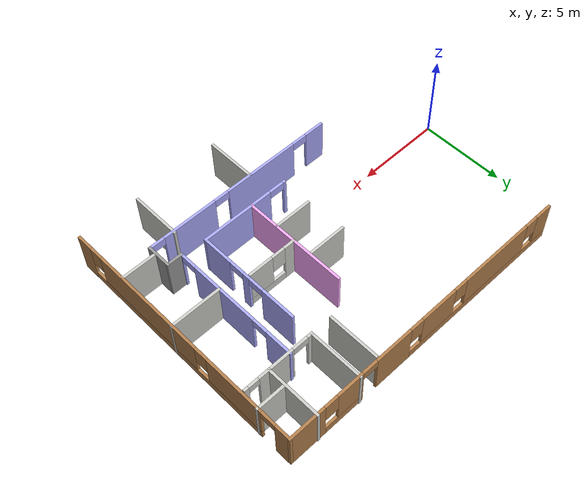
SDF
<sdf version="1.6">
 <model name="newOffice">
  <pose>10.3877 1.61821 0 0 -0 0</pose>
  <link name="Wall_13">
   <collision name="Wall_13_Collision">
    <geometry><box><size>3.25 0.15 2.5</size></box></geometry>
    <pose>0 0 1.25 0 -0 0</pose>
   </collision>
   <visual name="Wall_13_Visual">
    <pose>0 0 1.25 0 -0 0</pose>
    <geometry><box><size>3.25 0.15 2.5</size></box></geometry>
    <material>
     <script><uri>file://media/materials/scripts/gazebo.material</uri><name>Gazebo/CeilingTiled</name></script>
     <ambient>0.760784 0.662745 0.627451 1</ambient>
    </material>
    <meta><layer>0</layer></meta>
   </visual>
   <pose>4.6433 5.89365 0 0 0 -1.5708</pose>
  </link>
  <link name="Wall_14">
   <pose>6.6933 4.34365 0 0 -0 0</pose>
   <visual name="Wall_14_Visual_0">
    <pose>-1.94946 0 1.25 0 -0 0</pose>
    <geometry><box><size>0.351082 0.15 2.5</size></box></geometry>
    <material>
     <script><uri>file://media/materials/scripts/gazebo.material</uri><name>Gazebo/CeilingTiled</name></script>
     <ambient>0.760784 0.662745 0.627451 1</ambient>
    </material>
    <meta><layer>0</layer></meta>
   </visual>
   <collision name="Wall_14_Collision_0">
    <geometry><box><size>0.351082 0.15 2.5</size></box></geometry>
    <pose>-1.94946 0 1.25 0 -0 0</pose>
   </collision>
   <visual name="Wall_14_Visual_1">
    <pose>0.175003 0 1.25 0 -0 0</pose>
    <geometry><box><size>2.09784 0.15 2.5</size></box></geometry>
    <material>
     <script><uri>file://media/materials/scripts/gazebo.material</uri><name>Gazebo/CeilingTiled</name></script>
     <ambient>0.760784 0.662745 0.627451 1</ambient>
    </material>
    <meta><layer>0</layer></meta>
   </visual>
   <collision name="Wall_14_Collision_1">
    <geometry><box><size>2.09784 0.15 2.5</size></box></geometry>
    <pose>0.175003 0 1.25 0 -0 0</pose>
   </collision>
   <visual name="Wall_14_Visual_2">
    <pose>1.98681 0 1.25 0 -0 0</pose>
    <geometry><box><size>0.276388 0.15 2.5</size></box></geometry>
    <material>
     <script><uri>file://media/materials/scripts/gazebo.material</uri><name>Gazebo/CeilingTiled</name></script>
     <ambient>0.760784 0.662745 0.627451 1</ambient>
    </material>
    <meta><layer>0</layer></meta>
   </visual>
   <collision name="Wall_14_Collision_2">
    <geometry><box><size>0.276388 0.15 2.5</size></box></geometry>
    <pose>1.98681 0 1.25 0 -0 0</pose>
   </collision>
   <visual name="Wall_14_Visual_3">
    <pose>-1.32392 0 2.25 0 -0 0</pose>
    <geometry><box><size>0.9 0.15 0.5</size></box></geometry>
    <material>
     <script><uri>file://media/materials/scripts/gazebo.material</uri><name>Gazebo/CeilingTiled</name></script>
     <ambient>0.760784 0.662745 0.627451 1</ambient>
    </material>
    <meta><layer>0</layer></meta>
   </visual>
   <collision name="Wall_14_Collision_3">
    <geometry><box><size>0.9 0.15 0.5</size></box></geometry>
    <pose>-1.32392 0 2.25 0 -0 0</pose>
   </collision>
   <visual name="Wall_14_Visual_4">
    <pose>1.53627 0 2.25 0 -0 0</pose>
    <geometry><box><size>0.624688 0.15 0.5</size></box></geometry>
    <material>
     <script><uri>file://media/materials/scripts/gazebo.material</uri><name>Gazebo/CeilingTiled</name></script>
     <ambient>0.760784 0.662745 0.627451 1</ambient>
    </material>
    <meta><layer>0</layer></meta>
   </visual>
   <collision name="Wall_14_Collision_4">
    <geometry><box><size>0.624688 0.15 0.5</size></box></geometry>
    <pose>1.53627 0 2.25 0 -0 0</pose>
   </collision>
  </link>
  <link name="Wall_16">
   <collision name="Wall_16_Collision">
    <geometry><box><size>3.25 0.15 2.5</size></box></geometry>
    <pose>0 0 1.25 0 -0 0</pose>
   </collision>
   <visual name="Wall_16_Visual">
    <pose>0 0 1.25 0 -0 0</pose>
    <geometry><box><size>3.25 0.15 2.5</size></box></geometry>
    <material>
     <script><uri>file://media/materials/scripts/gazebo.material</uri><name>Gazebo/CeilingTiled</name></script>
     <ambient>0.760784 0.662745 0.627451 1</ambient>
    </material>
    <meta><layer>0</layer></meta>
   </visual>
   <pose>7.29516 5.89365 0 0 0 -1.5708</pose>
  </link>
  <link name="Wall_18">
   <collision name="Wall_18_Collision">
    <geometry><box><size>1.75 0.15 2.5</size></box></geometry>
    <pose>0 0 1.25 0 -0 0</pose>
   </collision>
   <visual name="Wall_18_Visual">
    <pose>0 0 1.25 0 -0 0</pose>
    <geometry><box><size>1.75 0.15 2.5</size></box></geometry>
    <material>
     <script><uri>file://media/materials/scripts/gazebo.material</uri><name>Gazebo/CeilingTiled</name></script>
     <ambient>0.760784 0.662745 0.627451 1</ambient>
    </material>
    <meta><layer>0</layer></meta>
   </visual>
   <pose>8.14169 5.3966 0 0 -0 0</pose>
  </link>
  <link name="Wall_2">
   <pose>8.92902 -0.018654 0 0 -0 1.5708</pose>
   <visual name="Wall_2_Visual_0">
    <pose>-7.00867 0 1.25 0 -0 0</pose>
    <geometry><box><size>0.982667 0.15 2.5</size></box></geometry>
    <material>
     <script><uri>file://media/materials/scripts/gazebo.material</uri><name>Gazebo/Wood</name></script>
     <ambient>1 0.666667 1 1</ambient>
    </material>
    <meta><layer>0</layer></meta>
   </visual>
   <collision name="Wall_2_Collision_0">
    <geometry><box><size>0.982667 0.15 2.5</size></box></geometry>
    <pose>-7.00867 0 1.25 0 -0 0</pose>
   </collision>
   <visual name="Wall_2_Visual_1">
    <pose>7.01908 0 1.25 0 -0 0</pose>
    <geometry><box><size>0.961832 0.15 2.5</size></box></geometry>
    <material>
     <script><uri>file://media/materials/scripts/gazebo.material</uri><name>Gazebo/Wood</name></script>
     <ambient>1 0.666667 1 1</ambient>
    </material>
    <meta><layer>0</layer></meta>
   </visual>
   <collision name="Wall_2_Collision_1">
    <geometry><box><size>0.961832 0.15 2.5</size></box></geometry>
    <pose>7.01908 0 1.25 0 -0 0</pose>
   </collision>
   <visual name="Wall_2_Visual_2">
    <pose>-0.439582 0 0.25 0 -0 0</pose>
    <geometry><box><size>12.1555 0.15 0.5</size></box></geometry>
    <material>
     <script><uri>file://media/materials/scripts/gazebo.material</uri><name>Gazebo/Wood</name></script>
     <ambient>1 0.666667 1 1</ambient>
    </material>
    <meta><layer>0</layer></meta>
   </visual>
   <collision name="Wall_2_Collision_2">
    <geometry><box><size>12.1555 0.15 0.5</size></box></geometry>
    <pose>-0.439582 0 0.25 0 -0 0</pose>
   </collision>
   <visual name="Wall_2_Visual_3">
    <pose>-2.24767 0 1.5 0 -0 0</pose>
    <geometry><box><size>6.93933 0.15 2</size></box></geometry>
    <material>
     <script><uri>file://media/materials/scripts/gazebo.material</uri><name>Gazebo/Wood</name></script>
     <ambient>1 0.666667 1 1</ambient>
    </material>
    <meta><layer>0</layer></meta>
   </visual>
   <collision name="Wall_2_Collision_3">
    <geometry><box><size>6.93933 0.15 2</size></box></geometry>
    <pose>-2.24767 0 1.5 0 -0 0</pose>
   </collision>
   <visual name="Wall_2_Visual_4">
    <pose>3.83008 0 1.5 0 -0 0</pose>
    <geometry><box><size>3.61617 0.15 2</size></box></geometry>
    <material>
     <script><uri>file://media/materials/scripts/gazebo.material</uri><name>Gazebo/Wood</name></script>
     <ambient>1 0.666667 1 1</ambient>
    </material>
    <meta><layer>0</layer></meta>
   </visual>
   <collision name="Wall_2_Collision_4">
    <geometry><box><size>3.61617 0.15 2</size></box></geometry>
    <pose>3.83008 0 1.5 0 -0 0</pose>
   </collision>
   <visual name="Wall_2_Visual_5">
    <pose>-6.11733 0 1.9 0 -0 0</pose>
    <geometry><box><size>0.8 0.15 1.2</size></box></geometry>
    <material>
     <script><uri>file://media/materials/scripts/gazebo.material</uri><name>Gazebo/Wood</name></script>
     <ambient>1 0.666667 1 1</ambient>
    </material>
    <meta><layer>0</layer></meta>
   </visual>
   <collision name="Wall_2_Collision_5">
    <geometry><box><size>0.8 0.15 1.2</size></box></geometry>
    <pose>-6.11733 0 1.9 0 -0 0</pose>
   </collision>
   <visual name="Wall_2_Visual_6">
    <pose>1.622 0 1.9 0 -0 0</pose>
    <geometry><box><size>0.8 0.15 1.2</size></box></geometry>
    <material>
     <script><uri>file://media/materials/scripts/gazebo.material</uri><name>Gazebo/Wood</name></script>
     <ambient>1 0.666667 1 1</ambient>
    </material>
    <meta><layer>0</layer></meta>
   </visual>
   <collision name="Wall_2_Collision_6">
    <geometry><box><size>0.8 0.15 1.2</size></box></geometry>
    <pose>1.622 0 1.9 0 -0 0</pose>
   </collision>
   <visual name="Wall_2_Visual_7">
    <pose>6.08817 0 2.25 0 -0 0</pose>
    <geometry><box><size>0.9 0.15 0.5</size></box></geometry>
    <material>
     <script><uri>file://media/materials/scripts/gazebo.material</uri><name>Gazebo/Wood</name></script>
     <ambient>1 0.666667 1 1</ambient>
    </material>
    <meta><layer>0</layer></meta>
   </visual>
   <collision name="Wall_2_Collision_7">
    <geometry><box><size>0.9 0.15 0.5</size></box></geometry>
    <pose>6.08817 0 2.25 0 -0 0</pose>
   </collision>
  </link>
  <link name="Wall_3">
   <pose>0.004022 7.40635 0 0 -0 3.14159</pose>
   <visual name="Wall_3_Visual_0">
    <pose>-7.91801 0 1.25 0 -0 0</pose>
    <geometry><box><size>2.16398 0.15 2.5</size></box></geometry>
    <material>
     <script><uri>file://media/materials/scripts/gazebo.material</uri><name>Gazebo/Wood</name></script>
     <ambient>1 0.666667 1 1</ambient>
    </material>
    <meta><layer>0</layer></meta>
   </visual>
   <collision name="Wall_3_Collision_0">
    <geometry><box><size>2.16398 0.15 2.5</size></box></geometry>
    <pose>-7.91801 0 1.25 0 -0 0</pose>
   </collision>
   <visual name="Wall_3_Visual_1">
    <pose>-2.4037 0 1.25 0 -0 0</pose>
    <geometry><box><size>2.2702 0.15 2.5</size></box></geometry>
    <material>
     <script><uri>file://media/materials/scripts/gazebo.material</uri><name>Gazebo/Wood</name></script>
     <ambient>1 0.666667 1 1</ambient>
    </material>
    <meta><layer>0</layer></meta>
   </visual>
   <collision name="Wall_3_Collision_1">
    <geometry><box><size>2.2702 0.15 2.5</size></box></geometry>
    <pose>-2.4037 0 1.25 0 -0 0</pose>
   </collision>
   <visual name="Wall_3_Visual_2">
    <pose>-5.63741 0 0.25 0 -0 0</pose>
    <geometry><box><size>2.39722 0.15 0.5</size></box></geometry>
    <material>
     <script><uri>file://media/materials/scripts/gazebo.material</uri><name>Gazebo/Wood</name></script>
     <ambient>1 0.666667 1 1</ambient>
    </material>
    <meta><layer>0</layer></meta>
   </visual>
   <collision name="Wall_3_Collision_2">
    <geometry><box><size>2.39722 0.15 0.5</size></box></geometry>
    <pose>-5.63741 0 0.25 0 -0 0</pose>
   </collision>
   <visual name="Wall_3_Visual_3">
    <pose>3.8657 0 0.25 0 -0 0</pose>
    <geometry><box><size>10.2686 0.15 0.5</size></box></geometry>
    <material>
     <script><uri>file://media/materials/scripts/gazebo.material</uri><name>Gazebo/Wood</name></script>
     <ambient>1 0.666667 1 1</ambient>
    </material>
    <meta><layer>0</layer></meta>
   </visual>
   <collision name="Wall_3_Collision_3">
    <geometry><box><size>10.2686 0.15 0.5</size></box></geometry>
    <pose>3.8657 0 0.25 0 -0 0</pose>
   </collision>
   <visual name="Wall_3_Visual_4">
    <pose>-5.23741 0 1.5 0 -0 0</pose>
    <geometry><box><size>1.59722 0.15 2</size></box></geometry>
    <material>
     <script><uri>file://media/materials/scripts/gazebo.material</uri><name>Gazebo/Wood</name></script>
     <ambient>1 0.666667 1 1</ambient>
    </material>
    <meta><layer>0</layer></meta>
   </visual>
   <collision name="Wall_3_Collision_4">
    <geometry><box><size>1.59722 0.15 2</size></box></geometry>
    <pose>-5.23741 0 1.5 0 -0 0</pose>
   </collision>
   <visual name="Wall_3_Visual_5">
    <pose>-5.23741 0 1.5 0 -0 0</pose>
    <geometry><box><size>1.59722 0.15 2</size></box></geometry>
    <material>
     <script><uri>file://media/materials/scripts/gazebo.material</uri><name>Gazebo/Wood</name></script>
     <ambient>1 0.666667 1 1</ambient>
    </material>
    <meta><layer>0</layer></meta>
   </visual>
   <collision name="Wall_3_Collision_5">
    <geometry><box><size>1.59722 0.15 2</size></box></geometry>
    <pose>-5.23741 0 1.5 0 -0 0</pose>
   </collision>
   <visual name="Wall_3_Visual_6">
    <pose>0.676212 0 1.5 0 -0 0</pose>
    <geometry><box><size>2.28961 0.15 2</size></box></geometry>
    <material>
     <script><uri>file://media/materials/scripts/gazebo.material</uri><name>Gazebo/Wood</name></script>
     <ambient>1 0.666667 1 1</ambient>
    </material>
    <meta><layer>0</layer></meta>
   </visual>
   <collision name="Wall_3_Collision_6">
    <geometry><box><size>2.28961 0.15 2</size></box></geometry>
    <pose>0.676212 0 1.5 0 -0 0</pose>
   </collision>
   <visual name="Wall_3_Visual_7">
    <pose>4.88237 0 1.5 0 -0 0</pose>
    <geometry><box><size>4.5227 0.15 2</size></box></geometry>
    <material>
     <script><uri>file://media/materials/scripts/gazebo.material</uri><name>Gazebo/Wood</name></script>
     <ambient>1 0.666667 1 1</ambient>
    </material>
    <meta><layer>0</layer></meta>
   </visual>
   <collision name="Wall_3_Collision_7">
    <geometry><box><size>4.5227 0.15 2</size></box></geometry>
    <pose>4.88237 0 1.5 0 -0 0</pose>
   </collision>
   <visual name="Wall_3_Visual_8">
    <pose>8.47186 0 1.5 0 -0 0</pose>
    <geometry><box><size>1.05628 0.15 2</size></box></geometry>
    <material>
     <script><uri>file://media/materials/scripts/gazebo.material</uri><name>Gazebo/Wood</name></script>
     <ambient>1 0.666667 1 1</ambient>
    </material>
    <meta><layer>0</layer></meta>
   </visual>
   <collision name="Wall_3_Collision_8">
    <geometry><box><size>1.05628 0.15 2</size></box></geometry>
    <pose>8.47186 0 1.5 0 -0 0</pose>
   </collision>
   <visual name="Wall_3_Visual_9">
    <pose>-6.43602 0 1.9 0 -0 0</pose>
    <geometry><box><size>0.8 0.15 1.2</size></box></geometry>
    <material>
     <script><uri>file://media/materials/scripts/gazebo.material</uri><name>Gazebo/Wood</name></script>
     <ambient>1 0.666667 1 1</ambient>
    </material>
    <meta><layer>0</layer></meta>
   </visual>
   <collision name="Wall_3_Collision_9">
    <geometry><box><size>0.8 0.15 1.2</size></box></geometry>
    <pose>-6.43602 0 1.9 0 -0 0</pose>
   </collision>
   <visual name="Wall_3_Visual_10">
    <pose>-0.868594 0 1.9 0 -0 0</pose>
    <geometry><box><size>0.8 0.15 1.2</size></box></geometry>
    <material>
     <script><uri>file://media/materials/scripts/gazebo.material</uri><name>Gazebo/Wood</name></script>
     <ambient>1 0.666667 1 1</ambient>
    </material>
    <meta><layer>0</layer></meta>
   </visual>
   <collision name="Wall_3_Collision_10">
    <geometry><box><size>0.8 0.15 1.2</size></box></geometry>
    <pose>-0.868594 0 1.9 0 -0 0</pose>
   </collision>
   <visual name="Wall_3_Visual_11">
    <pose>2.22102 0 1.9 0 -0 0</pose>
    <geometry><box><size>0.8 0.15 1.2</size></box></geometry>
    <material>
     <script><uri>file://media/materials/scripts/gazebo.material</uri><name>Gazebo/Wood</name></script>
     <ambient>1 0.666667 1 1</ambient>
    </material>
    <meta><layer>0</layer></meta>
   </visual>
   <collision name="Wall_3_Collision_11">
    <geometry><box><size>0.8 0.15 1.2</size></box></geometry>
    <pose>2.22102 0 1.9 0 -0 0</pose>
   </collision>
   <visual name="Wall_3_Visual_12">
    <pose>7.54372 0 1.9 0 -0 0</pose>
    <geometry><box><size>0.8 0.15 1.2</size></box></geometry>
    <material>
     <script><uri>file://media/materials/scripts/gazebo.material</uri><name>Gazebo/Wood</name></script>
     <ambient>1 0.666667 1 1</ambient>
    </material>
    <meta><layer>0</layer></meta>
   </visual>
   <collision name="Wall_3_Collision_12">
    <geometry><box><size>0.8 0.15 1.2</size></box></geometry>
    <pose>7.54372 0 1.9 0 -0 0</pose>
   </collision>
   <visual name="Wall_3_Visual_13">
    <pose>-3.9888 0 2.25 0 -0 0</pose>
    <geometry><box><size>0.9 0.15 0.5</size></box></geometry>
    <material>
     <script><uri>file://media/materials/scripts/gazebo.material</uri><name>Gazebo/Wood</name></script>
     <ambient>1 0.666667 1 1</ambient>
    </material>
    <meta><layer>0</layer></meta>
   </visual>
   <collision name="Wall_3_Collision_13">
    <geometry><box><size>0.9 0.15 0.5</size></box></geometry>
    <pose>-3.9888 0 2.25 0 -0 0</pose>
   </collision>
   <visual name="Wall_3_Visual_14">
    <pose>-3.9888 0 2.25 0 -0 0</pose>
    <geometry><box><size>0.9 0.15 0.5</size></box></geometry>
    <material>
     <script><uri>file://media/materials/scripts/gazebo.material</uri><name>Gazebo/Wood</name></script>
     <ambient>1 0.666667 1 1</ambient>
    </material>
    <meta><layer>0</layer></meta>
   </visual>
   <collision name="Wall_3_Collision_14">
    <geometry><box><size>0.9 0.15 0.5</size></box></geometry>
    <pose>-3.9888 0 2.25 0 -0 0</pose>
   </collision>
  </link>
  <link name="Wall_33">
   <pose>4.64199 0.020406 0 0 0 -1.5708</pose>
   <visual name="Wall_33_Visual_0">
    <pose>-2.07423 0 1.25 0 -0 0</pose>
    <geometry><box><size>2.10154 0.15 2.5</size></box></geometry>
    <material>
     <script><uri>file://media/materials/scripts/gazebo.material</uri><name>Gazebo/Grey</name></script>
     <ambient>0.666667 0.666667 1 1</ambient>
    </material>
    <meta><layer>0</layer></meta>
   </visual>
   <collision name="Wall_33_Collision_0">
    <geometry><box><size>2.10154 0.15 2.5</size></box></geometry>
    <pose>-2.07423 0 1.25 0 -0 0</pose>
   </collision>
   <visual name="Wall_33_Visual_1">
    <pose>0.099527 0 1.25 0 -0 0</pose>
    <geometry><box><size>0.44597 0.15 2.5</size></box></geometry>
    <material>
     <script><uri>file://media/materials/scripts/gazebo.material</uri><name>Gazebo/Grey</name></script>
     <ambient>0.666667 0.666667 1 1</ambient>
    </material>
    <meta><layer>0</layer></meta>
   </visual>
   <collision name="Wall_33_Collision_1">
    <geometry><box><size>0.44597 0.15 2.5</size></box></geometry>
    <pose>0.099527 0 1.25 0 -0 0</pose>
   </collision>
   <visual name="Wall_33_Visual_2">
    <pose>2.17376 0 1.25 0 -0 0</pose>
    <geometry><box><size>1.90249 0.15 2.5</size></box></geometry>
    <material>
     <script><uri>file://media/materials/scripts/gazebo.material</uri><name>Gazebo/Grey</name></script>
     <ambient>0.666667 0.666667 1 1</ambient>
    </material>
    <meta><layer>0</layer></meta>
   </visual>
   <collision name="Wall_33_Collision_2">
    <geometry><box><size>1.90249 0.15 2.5</size></box></geometry>
    <pose>2.17376 0 1.25 0 -0 0</pose>
   </collision>
   <visual name="Wall_33_Visual_3">
    <pose>-0.573458 0 2.25 0 -0 0</pose>
    <geometry><box><size>0.9 0.15 0.5</size></box></geometry>
    <material>
     <script><uri>file://media/materials/scripts/gazebo.material</uri><name>Gazebo/Grey</name></script>
     <ambient>0.666667 0.666667 1 1</ambient>
    </material>
    <meta><layer>0</layer></meta>
   </visual>
   <collision name="Wall_33_Collision_3">
    <geometry><box><size>0.9 0.15 0.5</size></box></geometry>
    <pose>-0.573458 0 2.25 0 -0 0</pose>
   </collision>
   <visual name="Wall_33_Visual_4">
    <pose>0.772512 0 2.25 0 -0 0</pose>
    <geometry><box><size>0.9 0.15 0.5</size></box></geometry>
    <material>
     <script><uri>file://media/materials/scripts/gazebo.material</uri><name>Gazebo/Grey</name></script>
     <ambient>0.666667 0.666667 1 1</ambient>
    </material>
    <meta><layer>0</layer></meta>
   </visual>
   <collision name="Wall_33_Collision_4">
    <geometry><box><size>0.9 0.15 0.5</size></box></geometry>
    <pose>0.772512 0 2.25 0 -0 0</pose>
   </collision>
  </link>
  <link name="Wall_35">
   <pose>2.01699 -3.02959 0 0 -0 3.14159</pose>
   <visual name="Wall_35_Visual_0">
    <pose>-0.543959 0 1.25 0 -0 0</pose>
    <geometry><box><size>4.31208 0.15 2.5</size></box></geometry>
    <material>
     <script><uri>file://media/materials/scripts/gazebo.material</uri><name>Gazebo/Grey</name></script>
     <ambient>0.666667 0.666667 1 1</ambient>
    </material>
    <meta><layer>0</layer></meta>
   </visual>
   <collision name="Wall_35_Collision_0">
    <geometry><box><size>4.31208 0.15 2.5</size></box></geometry>
    <pose>-0.543959 0 1.25 0 -0 0</pose>
   </collision>
   <visual name="Wall_35_Visual_1">
    <pose>2.60604 0 1.25 0 -0 0</pose>
    <geometry><box><size>0.187919 0.15 2.5</size></box></geometry>
    <material>
     <script><uri>file://media/materials/scripts/gazebo.material</uri><name>Gazebo/Grey</name></script>
     <ambient>0.666667 0.666667 1 1</ambient>
    </material>
    <meta><layer>0</layer></meta>
   </visual>
   <collision name="Wall_35_Collision_1">
    <geometry><box><size>0.187919 0.15 2.5</size></box></geometry>
    <pose>2.60604 0 1.25 0 -0 0</pose>
   </collision>
   <visual name="Wall_35_Visual_2">
    <pose>2.06208 0 2.25 0 -0 0</pose>
    <geometry><box><size>0.9 0.15 0.5</size></box></geometry>
    <material>
     <script><uri>file://media/materials/scripts/gazebo.material</uri><name>Gazebo/Grey</name></script>
     <ambient>0.666667 0.666667 1 1</ambient>
    </material>
    <meta><layer>0</layer></meta>
   </visual>
   <collision name="Wall_35_Collision_2">
    <geometry><box><size>0.9 0.15 0.5</size></box></geometry>
    <pose>2.06208 0 2.25 0 -0 0</pose>
   </collision>
  </link>
  <link name="Wall_37">
   <collision name="Wall_37_Collision">
    <geometry><box><size>6.25 0.15 2.5</size></box></geometry>
    <pose>0 0 1.25 0 -0 0</pose>
   </collision>
   <visual name="Wall_37_Visual">
    <pose>0 0 1.25 0 -0 0</pose>
    <geometry><box><size>6.25 0.15 2.5</size></box></geometry>
    <material>
     <script><uri>file://media/materials/scripts/gazebo.material</uri><name>Gazebo/Grey</name></script>
     <ambient>1 0.666667 1 1</ambient>
    </material>
    <meta><layer>0</layer></meta>
   </visual>
   <pose>1.61924 0.020406 0 0 0 -1.5708</pose>
  </link>
  <link name="Wall_39">
   <collision name="Wall_39_Collision">
    <geometry><box><size>2.25 0.15 2.5</size></box></geometry>
    <pose>0 0 1.25 0 -0 0</pose>
   </collision>
   <visual name="Wall_39_Visual">
    <pose>0 0 1.25 0 -0 0</pose>
    <geometry><box><size>2.25 0.15 2.5</size></box></geometry>
    <material>
     <script><uri>file://media/materials/scripts/gazebo.material</uri><name>Gazebo/CeilingTiled</name></script>
     <ambient>1 0.666667 1 1</ambient>
    </material>
    <meta><layer>0</layer></meta>
   </visual>
   <pose>0.436095 1.1164 0 0 -0 0</pose>
  </link>
  <link name="Wall_41">
   <collision name="Wall_41_Collision">
    <geometry><box><size>2.25 0.15 2.5</size></box></geometry>
    <pose>0 0 1.25 0 -0 0</pose>
   </collision>
   <visual name="Wall_41_Visual">
    <pose>0 0 1.25 0 -0 0</pose>
    <geometry><box><size>2.25 0.15 2.5</size></box></geometry>
    <material>
     <script><uri>file://media/materials/scripts/gazebo.material</uri><name>Gazebo/CeilingTiled</name></script>
     <ambient>1 0.666667 1 1</ambient>
    </material>
    <meta><layer>0</layer></meta>
   </visual>
   <pose>0.529143 -1.20979 0 0 -0 0</pose>
  </link>
  <link name="Wall_43">
   <pose>3.04424 -0.000172 0 0 -0 0</pose>
   <visual name="Wall_43_Visual_0">
    <pose>-1.1334 0 1.25 0 -0 0</pose>
    <geometry><box><size>0.733196 0.15 2.5</size></box></geometry>
    <material>
     <script><uri>file://media/materials/scripts/gazebo.material</uri><name>Gazebo/CeilingTiled</name></script>
     <ambient>1 1 1 1</ambient>
    </material>
    <meta><layer>0</layer></meta>
   </visual>
   <collision name="Wall_43_Collision_0">
    <geometry><box><size>0.733196 0.15 2.5</size></box></geometry>
    <pose>-1.1334 0 1.25 0 -0 0</pose>
   </collision>
   <visual name="Wall_43_Visual_1">
    <pose>0.366598 0 0.25 0 -0 0</pose>
    <geometry><box><size>2.2668 0.15 0.5</size></box></geometry>
    <material>
     <script><uri>file://media/materials/scripts/gazebo.material</uri><name>Gazebo/CeilingTiled</name></script>
     <ambient>1 1 1 1</ambient>
    </material>
    <meta><layer>0</layer></meta>
   </visual>
   <collision name="Wall_43_Collision_1">
    <geometry><box><size>2.2668 0.15 0.5</size></box></geometry>
    <pose>0.366598 0 0.25 0 -0 0</pose>
   </collision>
   <visual name="Wall_43_Visual_2">
    <pose>0.766598 0 1.5 0 -0 0</pose>
    <geometry><box><size>1.4668 0.15 2</size></box></geometry>
    <material>
     <script><uri>file://media/materials/scripts/gazebo.material</uri><name>Gazebo/CeilingTiled</name></script>
     <ambient>1 1 1 1</ambient>
    </material>
    <meta><layer>0</layer></meta>
   </visual>
   <collision name="Wall_43_Collision_2">
    <geometry><box><size>1.4668 0.15 2</size></box></geometry>
    <pose>0.766598 0 1.5 0 -0 0</pose>
   </collision>
   <visual name="Wall_43_Visual_3">
    <pose>-0.366804 0 1.9 0 -0 0</pose>
    <geometry><box><size>0.8 0.15 1.2</size></box></geometry>
    <material>
     <script><uri>file://media/materials/scripts/gazebo.material</uri><name>Gazebo/CeilingTiled</name></script>
     <ambient>1 1 1 1</ambient>
    </material>
    <meta><layer>0</layer></meta>
   </visual>
   <collision name="Wall_43_Collision_3">
    <geometry><box><size>0.8 0.15 1.2</size></box></geometry>
    <pose>-0.366804 0 1.9 0 -0 0</pose>
   </collision>
  </link>
  <link name="Wall_47">
   <pose>1.09199 -4.54748 0 0 -0 0</pose>
   <visual name="Wall_47_Visual_0">
    <pose>-5.26055 0 1.25 0 -0 0</pose>
    <geometry><box><size>1.2289 0.15 2.5</size></box></geometry>
    <material>
     <script><uri>file://media/materials/scripts/gazebo.material</uri><name>Gazebo/Grey</name></script>
     <ambient>0.666667 0.666667 1 1</ambient>
    </material>
    <meta><layer>0</layer></meta>
   </visual>
   <collision name="Wall_47_Collision_0">
    <geometry><box><size>1.2289 0.15 2.5</size></box></geometry>
    <pose>-5.26055 0 1.25 0 -0 0</pose>
   </collision>
   <visual name="Wall_47_Visual_1">
    <pose>-1.48887 0 1.25 0 -0 0</pose>
    <geometry><box><size>4.51447 0.15 2.5</size></box></geometry>
    <material>
     <script><uri>file://media/materials/scripts/gazebo.material</uri><name>Gazebo/Grey</name></script>
     <ambient>0.666667 0.666667 1 1</ambient>
    </material>
    <meta><layer>0</layer></meta>
   </visual>
   <collision name="Wall_47_Collision_1">
    <geometry><box><size>4.51447 0.15 2.5</size></box></geometry>
    <pose>-1.48887 0 1.25 0 -0 0</pose>
   </collision>
   <visual name="Wall_47_Visual_2">
    <pose>3.2985 0 1.25 0 -0 0</pose>
    <geometry><box><size>3.26027 0.15 2.5</size></box></geometry>
    <material>
     <script><uri>file://media/materials/scripts/gazebo.material</uri><name>Gazebo/Grey</name></script>
     <ambient>0.666667 0.666667 1 1</ambient>
    </material>
    <meta><layer>0</layer></meta>
   </visual>
   <collision name="Wall_47_Collision_2">
    <geometry><box><size>3.26027 0.15 2.5</size></box></geometry>
    <pose>3.2985 0 1.25 0 -0 0</pose>
   </collision>
   <visual name="Wall_47_Visual_3">
    <pose>5.85182 0 1.25 0 -0 0</pose>
    <geometry><box><size>0.046363 0.15 2.5</size></box></geometry>
    <material>
     <script><uri>file://media/materials/scripts/gazebo.material</uri><name>Gazebo/Grey</name></script>
     <ambient>0.666667 0.666667 1 1</ambient>
    </material>
    <meta><layer>0</layer></meta>
   </visual>
   <collision name="Wall_47_Collision_3">
    <geometry><box><size>0.046363 0.15 2.5</size></box></geometry>
    <pose>5.85182 0 1.25 0 -0 0</pose>
   </collision>
   <visual name="Wall_47_Visual_4">
    <pose>-4.19611 0 2.25 0 -0 0</pose>
    <geometry><box><size>0.9 0.15 0.5</size></box></geometry>
    <material>
     <script><uri>file://media/materials/scripts/gazebo.material</uri><name>Gazebo/Grey</name></script>
     <ambient>0.666667 0.666667 1 1</ambient>
    </material>
    <meta><layer>0</layer></meta>
   </visual>
   <collision name="Wall_47_Collision_4">
    <geometry><box><size>0.9 0.15 0.5</size></box></geometry>
    <pose>-4.19611 0 2.25 0 -0 0</pose>
   </collision>
   <visual name="Wall_47_Visual_5">
    <pose>1.21837 0 2.25 0 -0 0</pose>
    <geometry><box><size>0.9 0.15 0.5</size></box></geometry>
    <material>
     <script><uri>file://media/materials/scripts/gazebo.material</uri><name>Gazebo/Grey</name></script>
     <ambient>0.666667 0.666667 1 1</ambient>
    </material>
    <meta><layer>0</layer></meta>
   </visual>
   <collision name="Wall_47_Collision_5">
    <geometry><box><size>0.9 0.15 0.5</size></box></geometry>
    <pose>1.21837 0 2.25 0 -0 0</pose>
   </collision>
   <visual name="Wall_47_Visual_6">
    <pose>5.37864 0 2.25 0 -0 0</pose>
    <geometry><box><size>0.9 0.15 0.5</size></box></geometry>
    <material>
     <script><uri>file://media/materials/scripts/gazebo.material</uri><name>Gazebo/Grey</name></script>
     <ambient>0.666667 0.666667 1 1</ambient>
    </material>
    <meta><layer>0</layer></meta>
   </visual>
   <collision name="Wall_47_Collision_6">
    <geometry><box><size>0.9 0.15 0.5</size></box></geometry>
    <pose>5.37864 0 2.25 0 -0 0</pose>
   </collision>
  </link>
  <link name="Wall_48">
   <collision name="Wall_48_Collision">
    <geometry><box><size>1.5 0.15 2.5</size></box></geometry>
    <pose>0 0 1.25 0 -0 0</pose>
   </collision>
   <visual name="Wall_48_Visual">
    <pose>0 0 1.25 0 -0 0</pose>
    <geometry><box><size>1.5 0.15 2.5</size></box></geometry>
    <material>
     <script><uri>file://media/materials/scripts/gazebo.material</uri><name>Gazebo/Grey</name></script>
     <ambient>1 1 1 1</ambient>
    </material>
    <meta><layer>0</layer></meta>
   </visual>
   <pose>6.89199 -3.87248 0 0 -0 1.5708</pose>
  </link>
  <link name="Wall_49">
   <collision name="Wall_49_Collision">
    <geometry><box><size>1 0.15 2.5</size></box></geometry>
    <pose>0 0 1.25 0 -0 0</pose>
   </collision>
   <visual name="Wall_49_Visual">
    <pose>0 0 1.25 0 -0 0</pose>
    <geometry><box><size>1 0.15 2.5</size></box></geometry>
    <material>
     <script><uri>file://media/materials/scripts/gazebo.material</uri><name>Gazebo/Grey</name></script>
     <ambient>1 1 1 1</ambient>
    </material>
    <meta><layer>0</layer></meta>
   </visual>
   <pose>6.46699 -3.19747 0 0 -0 3.14159</pose>
  </link>
  <link name="Wall_50">
   <pose>6.04199 0.602525 0 0 -0 1.5708</pose>
   <visual name="Wall_50_Visual_0">
    <pose>-3.77282 0 1.25 0 -0 0</pose>
    <geometry><box><size>0.204365 0.15 2.5</size></box></geometry>
    <material>
     <script><uri>file://media/materials/scripts/gazebo.material</uri><name>Gazebo/Grey</name></script>
     <ambient>0.666667 0.666667 1 1</ambient>
    </material>
    <meta><layer>0</layer></meta>
   </visual>
   <collision name="Wall_50_Collision_0">
    <geometry><box><size>0.204365 0.15 2.5</size></box></geometry>
    <pose>-3.77282 0 1.25 0 -0 0</pose>
   </collision>
   <visual name="Wall_50_Visual_1">
    <pose>-0.712237 0 1.25 0 -0 0</pose>
    <geometry><box><size>4.1168 0.15 2.5</size></box></geometry>
    <material>
     <script><uri>file://media/materials/scripts/gazebo.material</uri><name>Gazebo/Grey</name></script>
     <ambient>0.666667 0.666667 1 1</ambient>
    </material>
    <meta><layer>0</layer></meta>
   </visual>
   <collision name="Wall_50_Collision_1">
    <geometry><box><size>4.1168 0.15 2.5</size></box></geometry>
    <pose>-0.712237 0 1.25 0 -0 0</pose>
   </collision>
   <visual name="Wall_50_Visual_2">
    <pose>3.06058 0 1.25 0 -0 0</pose>
    <geometry><box><size>1.62884 0.15 2.5</size></box></geometry>
    <material>
     <script><uri>file://media/materials/scripts/gazebo.material</uri><name>Gazebo/Grey</name></script>
     <ambient>0.666667 0.666667 1 1</ambient>
    </material>
    <meta><layer>0</layer></meta>
   </visual>
   <collision name="Wall_50_Collision_2">
    <geometry><box><size>1.62884 0.15 2.5</size></box></geometry>
    <pose>3.06058 0 1.25 0 -0 0</pose>
   </collision>
   <visual name="Wall_50_Visual_3">
    <pose>-3.22064 0 2.25 0 -0 0</pose>
    <geometry><box><size>0.9 0.15 0.5</size></box></geometry>
    <material>
     <script><uri>file://media/materials/scripts/gazebo.material</uri><name>Gazebo/Grey</name></script>
     <ambient>0.666667 0.666667 1 1</ambient>
    </material>
    <meta><layer>0</layer></meta>
   </visual>
   <collision name="Wall_50_Collision_3">
    <geometry><box><size>0.9 0.15 0.5</size></box></geometry>
    <pose>-3.22064 0 2.25 0 -0 0</pose>
   </collision>
   <visual name="Wall_50_Visual_4">
    <pose>1.79616 0 2.25 0 -0 0</pose>
    <geometry><box><size>0.9 0.15 0.5</size></box></geometry>
    <material>
     <script><uri>file://media/materials/scripts/gazebo.material</uri><name>Gazebo/Grey</name></script>
     <ambient>0.666667 0.666667 1 1</ambient>
    </material>
    <meta><layer>0</layer></meta>
   </visual>
   <collision name="Wall_50_Collision_4">
    <geometry><box><size>0.9 0.15 0.5</size></box></geometry>
    <pose>1.79616 0 2.25 0 -0 0</pose>
   </collision>
  </link>
  <link name="Wall_52">
   <collision name="Wall_52_Collision">
    <geometry><box><size>3 0.15 2.5</size></box></geometry>
    <pose>0 0 1.25 0 -0 0</pose>
   </collision>
   <visual name="Wall_52_Visual">
    <pose>0 0 1.25 0 -0 0</pose>
    <geometry><box><size>3 0.15 2.5</size></box></geometry>
    <material>
     <script><uri>file://media/materials/scripts/gazebo.material</uri><name>Gazebo/CeilingTiled</name></script>
     <ambient>0.760784 0.662745 0.627451 1</ambient>
    </material>
    <meta><layer>0</layer></meta>
   </visual>
   <pose>7.51054 -0.418888 0 0 -0 0</pose>
  </link>
  <link name="Wall_54">
   <collision name="Wall_54_Collision">
    <geometry><box><size>2 0.15 2.5</size></box></geometry>
    <pose>0 0 1.25 0 -0 0</pose>
   </collision>
   <visual name="Wall_54_Visual">
    <pose>0 0 1.25 0 -0 0</pose>
    <geometry><box><size>2 0.15 2.5</size></box></geometry>
    <material>
     <script><uri>file://media/materials/scripts/gazebo.material</uri><name>Gazebo/CeilingTiled</name></script>
     <ambient>0.760784 0.662745 0.627451 1</ambient>
    </material>
    <meta><layer>0</layer></meta>
   </visual>
   <pose>7.94102 -4.09428 0 0 -0 0</pose>
  </link>
  <link name="Wall_56">
   <collision name="Wall_56_Collision">
    <geometry><box><size>3 0.15 2.5</size></box></geometry>
    <pose>0 0 1.25 0 -0 0</pose>
   </collision>
   <visual name="Wall_56_Visual">
    <pose>0 0 1.25 0 -0 0</pose>
    <geometry><box><size>3 0.15 2.5</size></box></geometry>
    <material>
     <script><uri>file://media/materials/scripts/gazebo.material</uri><name>Gazebo/CeilingTiled</name></script>
     <ambient>0.760784 0.662745 0.627451 1</ambient>
    </material>
    <meta><layer>0</layer></meta>
   </visual>
   <pose>0.363098 -5.98452 0 0 0 -1.5708</pose>
  </link>
  <link name="Wall_58">
   <collision name="Wall_58_Collision">
    <geometry><box><size>3 0.15 2.5</size></box></geometry>
    <pose>0 0 1.25 0 -0 0</pose>
   </collision>
   <visual name="Wall_58_Visual">
    <pose>0 0 1.25 0 -0 0</pose>
    <geometry><box><size>3 0.15 2.5</size></box></geometry>
    <material>
     <script><uri>file://media/materials/scripts/gazebo.material</uri><name>Gazebo/CeilingTiled</name></script>
     <ambient>0.760784 0.662745 0.627451 1</ambient>
    </material>
    <meta><layer>0</layer></meta>
   </visual>
   <pose>5.4342 -5.89147 0 0 0 -1.5708</pose>
  </link>
  <link name="Wall_9">
   <collision name="Wall_9_Collision">
    <geometry><box><size>3 0.15 2.5</size></box></geometry>
    <pose>0 0 1.25 0 -0 0</pose>
   </collision>
   <visual name="Wall_9_Visual">
    <pose>0 0 1.25 0 -0 0</pose>
    <geometry><box><size>3 0.15 2.5</size></box></geometry>
    <material>
     <script><uri>file://media/materials/scripts/gazebo.material</uri><name>Gazebo/CeilingTiled</name></script>
     <ambient>0.760784 0.662745 0.627451 1</ambient>
    </material>
    <meta><layer>0</layer></meta>
   </visual>
   <pose>3.39789 5.79808 0 0 -0 1.5708</pose>
  </link>
  <static>1</static>
 </model>
</sdf>
